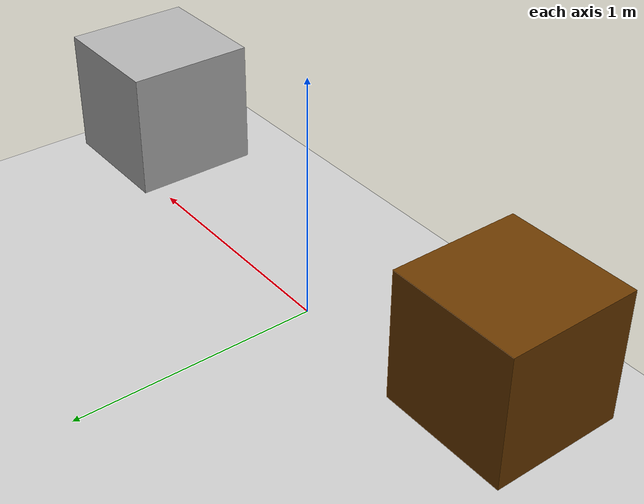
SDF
<?xml version="1.0" ?>
<sdf version="1.5">
    <world name="default">
	<plugin name="ros_link_attacher_plugin" filename="libgazebo_ros_link_attacher.so"/>
        <physics type="ode">
        <max_step_size>0.0002</max_step_size>
        <real_time_factor>1</real_time_factor>
        <real_time_update_rate>1000</real_time_update_rate>
        <gravity>0 0 -9.81</gravity>
            <ode>
                <solver>
                <type>quick</type>
                <iters>50</iters>
                <sor>1.3</sor>
                </solver>
                <constraints>
                <cfm>0.0</cfm>
                <erp>0.2</erp>
                <contact_max_correcting_vel>10.0</contact_max_correcting_vel>
                <contact_surface_layer>0.001</contact_surface_layer>
                </constraints>
            </ode>
        </physics>

        <scene>
        <sky>
            <clouds>
                <speed>12</speed>
            </clouds>
        </sky>
        </scene>
        <!-- A global light source -->
        <include>
            <uri>model://sun</uri>
        </include>
        <!-- A ground plane -->
        <include>
            <uri>model://ground_plane</uri>
        </include>
        <!-- environment blocks, obstacles or stairs -->
        <model name="brown">
        <static>False</static>
            <link name="brown_link">
                <pose>-1 0 0.5 0 0 0</pose>
                <collision name="static_box_collision">
                    <geometry>
                        <box>
                            <size>0.5 0.5 0.5</size>
                        </box>
                    </geometry>
                </collision>
                <visual name="static_box_visual">
                    <geometry>
                        <box>
                            <size>0.5 0.5 0.5</size>
                        </box>
                    </geometry>
                    <material>
                        <ambient>0.2 0.2 0.2 1.0</ambient>
                        <diffuse>.421 0.225 0.0 1.0</diffuse>
                    </material>
                </visual>
            </link>
        </model>
       <model name="camera">
        <static>True</static>
       <link name="camera_link">
        <sensor name="camera" type="camera">
          <pose>0 0 5 0 1.5707 0</pose>
          <camera>
            <horizontal_fov>1</horizontal_fov>
            <image>
              <width>1280</width>
              <height>960</height>
              <format>R8G8B8</format>
            </image>
            <clip>
              <near>0.1</near>
              <far>100</far>
            </clip>
          </camera>
          <update_rate>100</update_rate>
          <visualize>true</visualize>
  	<plugin name="camera_controller" filename="libgazebo_ros_camera.so">
	    <alwaysOn>true</alwaysOn>
	    <updateRate>5</updateRate>
	    <cameraName>high_altitude_camera</cameraName>
	    <imageTopicName>/camera/image_raw</imageTopicName>
	    <cameraInfoTopicName>/camera/camera_info</cameraInfoTopicName>
	    <frameName>camera_link</frameName>
	</plugin>
        </sensor>
      </link>
        </model>
    <model name="gray">
    <static>False</static>
    <link name="gray_link">
      <pose>1 0 0.5 0 0 0</pose>
      <visual name="A_block_visual">
        <geometry>
          <box>
            <size>0.5 0.5 0.5</size>
          </box>
        </geometry>
        <material>
          <ambient>0.5 0.5 0.5 1</ambient>
          <diffuse>0.7 0.7 0.7 1</diffuse>
        </material>

        <text>
          <font_name>Arial</font_name>
          <text>A</text>
          <scale>5</scale>
          <color>1 0 0 1</color>
        </text>
      </visual>
      <collision name="A_block_collision">
        <geometry>
          <box>
            <size>0.3 0.3 0.5</size>
          </box>
        </geometry>
      </collision>
    </link>
  </model>
    </world>
</sdf>
